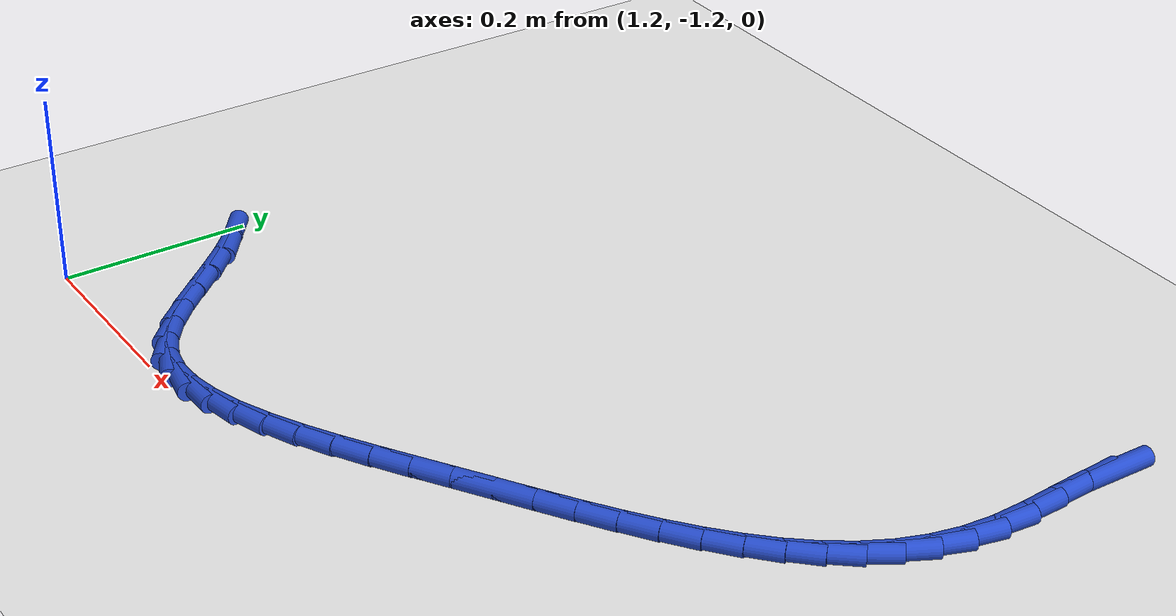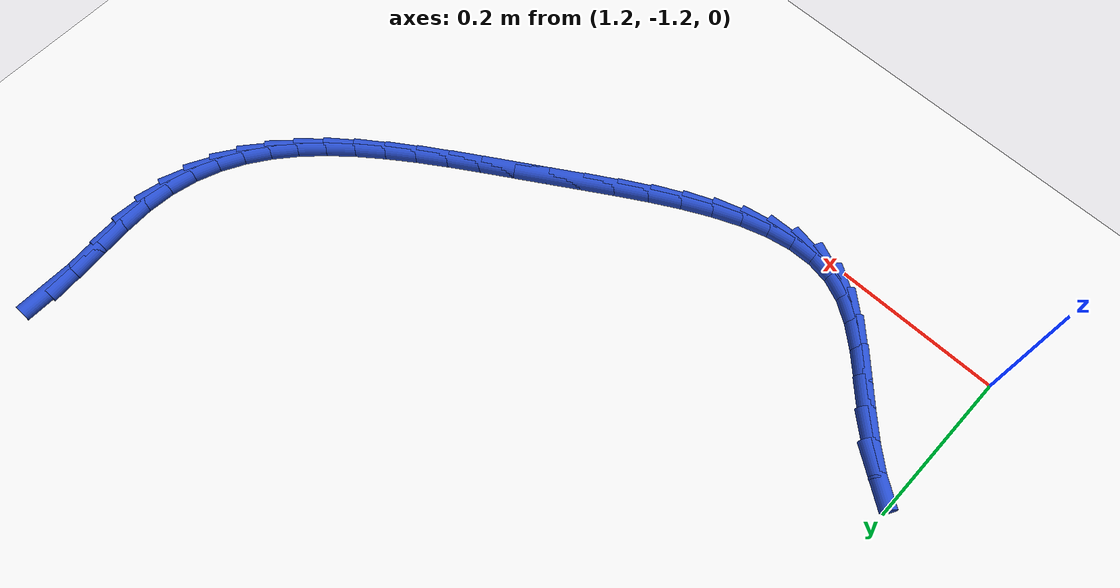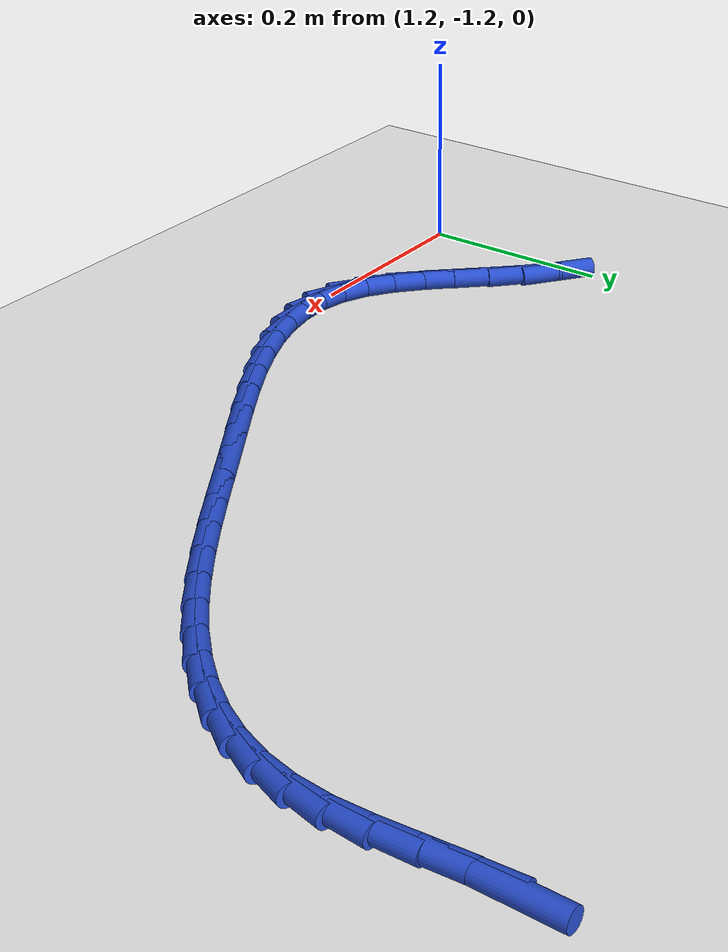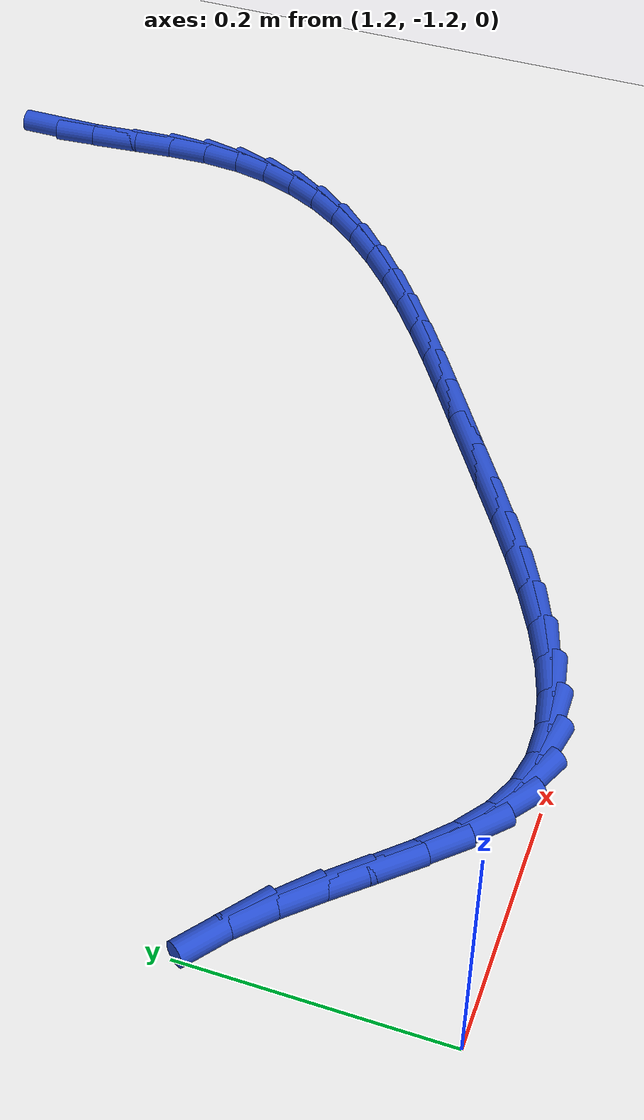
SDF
<sdf version="1.6">
 <world name="default">
  <model name="ground_plane">
   <static>1</static>
   <link name="link">
    <collision name="collision">
     <geometry><plane><normal>0 0 1</normal><size>100 100</size></plane></geometry>
     <surface><friction><ode><mu>100</mu><mu2>50</mu2></ode></friction></surface>
    </collision>
    <visual name="visual">
     <cast_shadows>0</cast_shadows>
     <geometry><plane><normal>0 0 1</normal><size>100 100</size></plane></geometry>
     <material>
      <script><uri>file://media/materials/scripts/gazebo.material</uri><name>Gazebo/WhiteGlow</name></script>
     </material>
    </visual>
   </link>
  </model>
  <model name="line">
   <link name="link_122">
    <pose>2.0444113715785863 -0.5550982972731053 0.01 0 1.57 1.5674267809676676</pose>
    <collision name="collision">
     <geometry><cylinder><radius>0.01</radius><length>0.08</length></cylinder></geometry>
    </collision>
    <visual name="visual">
     <material>
      <script><name>Gazebo/Blue</name><uri>file://media/materials/scripts/gazebo.material</uri></script>
     </material>
     <geometry><cylinder><radius>0.01</radius><length>0.08</length></cylinder></geometry>
    </visual>
   </link>
   <link name="link_123">
    <pose>2.044293367879539 -0.5901188188802325 0.01 0 1.57 -1.493837935682603</pose>
    <collision name="collision">
     <geometry><cylinder><radius>0.01</radius><length>0.08</length></cylinder></geometry>
    </collision>
    <visual name="visual">
     <material>
      <script><name>Gazebo/Blue</name><uri>file://media/materials/scripts/gazebo.material</uri></script>
     </material>
     <geometry><cylinder><radius>0.01</radius><length>0.08</length></cylinder></geometry>
    </visual>
   </link>
   <link name="link_124">
    <pose>2.0471248156564976 -0.6268380861268281 0.01 0 1.57 -1.4815270692511242</pose>
    <collision name="collision">
     <geometry><cylinder><radius>0.01</radius><length>0.08</length></cylinder></geometry>
    </collision>
    <visual name="visual">
     <material>
      <script><name>Gazebo/Blue</name><uri>file://media/materials/scripts/gazebo.material</uri></script>
     </material>
     <geometry><cylinder><radius>0.01</radius><length>0.08</length></cylinder></geometry>
    </visual>
   </link>
   <link name="link_125">
    <pose>2.0504473537734875 -0.6639584537274638 0.01 0 1.57 -1.5334000667984646</pose>
    <collision name="collision">
     <geometry><cylinder><radius>0.01</radius><length>0.08</length></cylinder></geometry>
    </collision>
    <visual name="visual">
     <material>
      <script><name>Gazebo/Blue</name><uri>file://media/materials/scripts/gazebo.material</uri></script>
     </material>
     <geometry><cylinder><radius>0.01</radius><length>0.08</length></cylinder></geometry>
    </visual>
   </link>
   <link name="link_126">
    <pose>2.051802621094533 -0.7001822763967085 0.01 0 1.57 1.4914013308325451</pose>
    <collision name="collision">
     <geometry><cylinder><radius>0.01</radius><length>0.08</length></cylinder></geometry>
    </collision>
    <visual name="visual">
     <material>
      <script><name>Gazebo/Blue</name><uri>file://media/materials/scripts/gazebo.material</uri></script>
     </material>
     <geometry><cylinder><radius>0.01</radius><length>0.08</length></cylinder></geometry>
    </visual>
   </link>
   <link name="link_127">
    <pose>2.049080281900035 -0.7343987482108449 0.01 0 1.57 1.3535852086469191</pose>
    <collision name="collision">
     <geometry><cylinder><radius>0.01</radius><length>0.08</length></cylinder></geometry>
    </collision>
    <visual name="visual">
     <material>
      <script><name>Gazebo/Blue</name><uri>file://media/materials/scripts/gazebo.material</uri></script>
     </material>
     <geometry><cylinder><radius>0.01</radius><length>0.08</length></cylinder></geometry>
    </visual>
   </link>
   <link name="link_128">
    <pose>2.0420002556558816 -0.7664796458235601 0.01 0 1.57 1.2173846462992663</pose>
    <collision name="collision">
     <geometry><cylinder><radius>0.01</radius><length>0.08</length></cylinder></geometry>
    </collision>
    <visual name="visual">
     <material>
      <script><name>Gazebo/Blue</name><uri>file://media/materials/scripts/gazebo.material</uri></script>
     </material>
     <geometry><cylinder><radius>0.01</radius><length>0.08</length></cylinder></geometry>
    </visual>
   </link>
   <link name="link_129">
    <pose>2.0308820027217656 -0.7966186127196623 0.01 0 1.57 1.0892435020557771</pose>
    <collision name="collision">
     <geometry><cylinder><radius>0.01</radius><length>0.08</length></cylinder></geometry>
    </collision>
    <visual name="visual">
     <material>
      <script><name>Gazebo/Blue</name><uri>file://media/materials/scripts/gazebo.material</uri></script>
     </material>
     <geometry><cylinder><radius>0.01</radius><length>0.08</length></cylinder></geometry>
    </visual>
   </link>
   <link name="link_130">
    <pose>2.016045329883029 -0.8250094783644769 0.01 0 1.57 0.9739662295538516</pose>
    <collision name="collision">
     <geometry><cylinder><radius>0.01</radius><length>0.08</length></cylinder></geometry>
    </collision>
    <visual name="visual">
     <material>
      <script><name>Gazebo/Blue</name><uri>file://media/materials/scripts/gazebo.material</uri></script>
     </material>
     <geometry><cylinder><radius>0.01</radius><length>0.08</length></cylinder></geometry>
    </visual>
   </link>
   <link name="link_131">
    <pose>1.9978100439250137 -0.8518460722233293 0.01 0 1.57 0.8741160988835499</pose>
    <collision name="collision">
     <geometry><cylinder><radius>0.01</radius><length>0.08</length></cylinder></geometry>
    </collision>
    <visual name="visual">
     <material>
      <script><name>Gazebo/Blue</name><uri>file://media/materials/scripts/gazebo.material</uri></script>
     </material>
     <geometry><cylinder><radius>0.01</radius><length>0.08</length></cylinder></geometry>
    </visual>
   </link>
   <link name="link_132">
    <pose>1.9764959516330605 -0.8773222237615459 0.01 0 1.57 0.7902851436520131</pose>
    <collision name="collision">
     <geometry><cylinder><radius>0.01</radius><length>0.08</length></cylinder></geometry>
    </collision>
    <visual name="visual">
     <material>
      <script><name>Gazebo/Blue</name><uri>file://media/materials/scripts/gazebo.material</uri></script>
     </material>
     <geometry><cylinder><radius>0.01</radius><length>0.08</length></cylinder></geometry>
    </visual>
   </link>
   <link name="link_133">
    <pose>1.9524228597925113 -0.90163176244445 0.01 0 1.57 0.7217812061195968</pose>
    <collision name="collision">
     <geometry><cylinder><radius>0.01</radius><length>0.08</length></cylinder></geometry>
    </collision>
    <visual name="visual">
     <material>
      <script><name>Gazebo/Blue</name><uri>file://media/materials/scripts/gazebo.material</uri></script>
     </material>
     <geometry><cylinder><radius>0.01</radius><length>0.08</length></cylinder></geometry>
    </visual>
   </link>
   <link name="link_134">
    <pose>1.9259105751887082 -0.9249685177373683 0.01 0 1.57 0.6672956932156234</pose>
    <collision name="collision">
     <geometry><cylinder><radius>0.01</radius><length>0.08</length></cylinder></geometry>
    </collision>
    <visual name="visual">
     <material>
      <script><name>Gazebo/Blue</name><uri>file://media/materials/scripts/gazebo.material</uri></script>
     </material>
     <geometry><cylinder><radius>0.01</radius><length>0.08</length></cylinder></geometry>
    </visual>
   </link>
   <link name="link_135">
    <pose>1.897278904606992 -0.9475263191056263 0.01 0 1.57 0.6253673754369606</pose>
    <collision name="collision">
     <geometry><cylinder><radius>0.01</radius><length>0.08</length></cylinder></geometry>
    </collision>
    <visual name="visual">
     <material>
      <script><name>Gazebo/Blue</name><uri>file://media/materials/scripts/gazebo.material</uri></script>
     </material>
     <geometry><cylinder><radius>0.01</radius><length>0.08</length></cylinder></geometry>
    </visual>
   </link>
   <link name="link_136">
    <pose>1.8668476548327049 -0.9694989960145495 0.01 0 1.57 0.5946413041679584</pose>
    <collision name="collision">
     <geometry><cylinder><radius>0.01</radius><length>0.08</length></cylinder></geometry>
    </collision>
    <visual name="visual">
     <material>
      <script><name>Gazebo/Blue</name><uri>file://media/materials/scripts/gazebo.material</uri></script>
     </material>
     <geometry><cylinder><radius>0.01</radius><length>0.08</length></cylinder></geometry>
    </visual>
   </link>
   <link name="link_137">
    <pose>1.834936632651188 -0.9910803779294628 0.01 0 1.57 0.5739859466319727</pose>
    <collision name="collision">
     <geometry><cylinder><radius>0.01</radius><length>0.08</length></cylinder></geometry>
    </collision>
    <visual name="visual">
     <material>
      <script><name>Gazebo/Blue</name><uri>file://media/materials/scripts/gazebo.material</uri></script>
     </material>
     <geometry><cylinder><radius>0.01</radius><length>0.08</length></cylinder></geometry>
    </visual>
   </link>
   <link name="link_138">
    <pose>1.8018656448477819 -1.012464294315692 0.01 0 1.57 0.5625298779416827</pose>
    <collision name="collision">
     <geometry><cylinder><radius>0.01</radius><length>0.08</length></cylinder></geometry>
    </collision>
    <visual name="visual">
     <material>
      <script><name>Gazebo/Blue</name><uri>file://media/materials/scripts/gazebo.material</uri></script>
     </material>
     <geometry><cylinder><radius>0.01</radius><length>0.08</length></cylinder></geometry>
    </visual>
   </link>
   <link name="link_139">
    <pose>1.7679544982078301 -1.0338445746385627 0.01 0 1.57 0.5596592985712474</pose>
    <collision name="collision">
     <geometry><cylinder><radius>0.01</radius><length>0.08</length></cylinder></geometry>
    </collision>
    <visual name="visual">
     <material>
      <script><name>Gazebo/Blue</name><uri>file://media/materials/scripts/gazebo.material</uri></script>
     </material>
     <geometry><cylinder><radius>0.01</radius><length>0.08</length></cylinder></geometry>
    </visual>
   </link>
   <link name="link_140">
    <pose>1.7335229995166732 -1.0554150483633993 0.01 0 1.57 0.5635042863274787</pose>
    <collision name="collision">
     <geometry><cylinder><radius>0.01</radius><length>0.08</length></cylinder></geometry>
    </collision>
    <visual name="visual">
     <material>
      <script><name>Gazebo/Blue</name><uri>file://media/materials/scripts/gazebo.material</uri></script>
     </material>
     <geometry><cylinder><radius>0.01</radius><length>0.08</length></cylinder></geometry>
    </visual>
   </link>
   <link name="link_141">
    <pose>1.6988803219098632 -1.0773037472425178 0.01 0 1.57 0.5611586046868732</pose>
    <collision name="collision">
     <geometry><cylinder><radius>0.01</radius><length>0.08</length></cylinder></geometry>
    </collision>
    <visual name="visual">
     <material>
      <script><name>Gazebo/Blue</name><uri>file://media/materials/scripts/gazebo.material</uri></script>
     </material>
     <geometry><cylinder><radius>0.01</radius><length>0.08</length></cylinder></geometry>
    </visual>
   </link>
   <link name="link_142">
    <pose>1.6642444760515722 -1.0990746180482496 0.01 0 1.57 0.54585882576377</pose>
    <collision name="collision">
     <geometry><cylinder><radius>0.01</radius><length>0.08</length></cylinder></geometry>
    </collision>
    <visual name="visual">
     <material>
      <script><name>Gazebo/Blue</name><uri>file://media/materials/scripts/gazebo.material</uri></script>
     </material>
     <geometry><cylinder><radius>0.01</radius><length>0.08</length></cylinder></geometry>
    </visual>
   </link>
   <link name="link_143">
    <pose>1.6297871162394568 -1.1200047687947763 0.01 0 1.57 0.5163618130859364</pose>
    <collision name="collision">
     <geometry><cylinder><radius>0.01</radius><length>0.08</length></cylinder></geometry>
    </collision>
    <visual name="visual">
     <material>
      <script><name>Gazebo/Blue</name><uri>file://media/materials/scripts/gazebo.material</uri></script>
     </material>
     <geometry><cylinder><radius>0.01</radius><length>0.08</length></cylinder></geometry>
    </visual>
   </link>
   <link name="link_144">
    <pose>1.5956795307106708 -1.1393690424279208 0.01 0 1.57 0.47029416527301465</pose>
    <collision name="collision">
     <geometry><cylinder><radius>0.01</radius><length>0.08</length></cylinder></geometry>
    </collision>
    <visual name="visual">
     <material>
      <script><name>Gazebo/Blue</name><uri>file://media/materials/scripts/gazebo.material</uri></script>
     </material>
     <geometry><cylinder><radius>0.01</radius><length>0.08</length></cylinder></geometry>
    </visual>
   </link>
   <link name="link_145">
    <pose>1.562093007702371 -1.156442281893509 0.01 0 1.57 0.40385233182448954</pose>
    <collision name="collision">
     <geometry><cylinder><radius>0.01</radius><length>0.08</length></cylinder></geometry>
    </collision>
    <visual name="visual">
     <material>
      <script><name>Gazebo/Blue</name><uri>file://media/materials/scripts/gazebo.material</uri></script>
     </material>
     <geometry><cylinder><radius>0.01</radius><length>0.08</length></cylinder></geometry>
    </visual>
   </link>
   <link name="link_146">
    <pose>1.5291988354517123 -1.1704993301373623 0.01 0 1.57 0.31156896049774796</pose>
    <collision name="collision">
     <geometry><cylinder><radius>0.01</radius><length>0.08</length></cylinder></geometry>
    </collision>
    <visual name="visual">
     <material>
      <script><name>Gazebo/Blue</name><uri>file://media/materials/scripts/gazebo.material</uri></script>
     </material>
     <geometry><cylinder><radius>0.01</radius><length>0.08</length></cylinder></geometry>
    </visual>
   </link>
   <link name="link_147">
    <pose>1.4971683021958513 -1.1808150301053058 0.01 0 1.57 0.18651702968733677</pose>
    <collision name="collision">
     <geometry><cylinder><radius>0.01</radius><length>0.08</length></cylinder></geometry>
    </collision>
    <visual name="visual">
     <material>
      <script><name>Gazebo/Blue</name><uri>file://media/materials/scripts/gazebo.material</uri></script>
     </material>
     <geometry><cylinder><radius>0.01</radius><length>0.08</length></cylinder></geometry>
    </visual>
   </link>
   <link name="link_148">
    <pose>1.4661726961719435 -1.1866642247431634 0.01 0 1.57 0.022069115494866565</pose>
    <collision name="collision">
     <geometry><cylinder><radius>0.01</radius><length>0.08</length></cylinder></geometry>
    </collision>
    <visual name="visual">
     <material>
      <script><name>Gazebo/Blue</name><uri>file://media/materials/scripts/gazebo.material</uri></script>
     </material>
     <geometry><cylinder><radius>0.01</radius><length>0.08</length></cylinder></geometry>
    </visual>
   </link>
   <link name="link_149">
    <pose>1.4363833056171436 -1.187321756996759 0.01 0 1.57 -0.18303685839386197</pose>
    <collision name="collision">
     <geometry><cylinder><radius>0.01</radius><length>0.08</length></cylinder></geometry>
    </collision>
    <visual name="visual">
     <material>
      <script><name>Gazebo/Blue</name><uri>file://media/materials/scripts/gazebo.material</uri></script>
     </material>
     <geometry><cylinder><radius>0.01</radius><length>0.08</length></cylinder></geometry>
    </visual>
   </link>
   <link name="link_150">
    <pose>1.4079714187686077 -1.1820624698119166 0.01 0 1.57 -0.4150978607780704</pose>
    <collision name="collision">
     <geometry><cylinder><radius>0.01</radius><length>0.08</length></cylinder></geometry>
    </collision>
    <visual name="visual">
     <material>
      <script><name>Gazebo/Blue</name><uri>file://media/materials/scripts/gazebo.material</uri></script>
     </material>
     <geometry><cylinder><radius>0.01</radius><length>0.08</length></cylinder></geometry>
    </visual>
   </link>
   <link name="link_151">
    <pose>1.3810921995871173 -1.170216647806839 0.01 0 1.57 -0.612733724716369</pose>
    <collision name="collision">
     <geometry><cylinder><radius>0.01</radius><length>0.08</length></cylinder></geometry>
    </collision>
    <visual name="visual">
     <material>
      <script><name>Gazebo/Blue</name><uri>file://media/materials/scripts/gazebo.material</uri></script>
     </material>
     <geometry><cylinder><radius>0.01</radius><length>0.08</length></cylinder></geometry>
    </visual>
   </link>
   <link name="link_152">
    <pose>1.3555645403917354 -1.1522708111887745 0.01 0 1.57 -0.738556440027594</pose>
    <collision name="collision">
     <geometry><cylinder><radius>0.01</radius><length>0.08</length></cylinder></geometry>
    </collision>
    <visual name="visual">
     <material>
      <script><name>Gazebo/Blue</name><uri>file://media/materials/scripts/gazebo.material</uri></script>
     </material>
     <geometry><cylinder><radius>0.01</radius><length>0.08</length></cylinder></geometry>
    </visual>
   </link>
   <link name="link_153">
    <pose>1.3308892232806597 -1.1298052695690357 0.01 0 1.57 -0.8060669280220623</pose>
    <collision name="collision">
     <geometry><cylinder><radius>0.01</radius><length>0.08</length></cylinder></geometry>
    </collision>
    <visual name="visual">
     <material>
      <script><name>Gazebo/Blue</name><uri>file://media/materials/scripts/gazebo.material</uri></script>
     </material>
     <geometry><cylinder><radius>0.01</radius><length>0.08</length></cylinder></geometry>
    </visual>
   </link>
   <link name="link_154">
    <pose>1.306554541870279 -1.1044432729241933 0.01 0 1.57 -0.8270129563700466</pose>
    <collision name="collision">
     <geometry><cylinder><radius>0.01</radius><length>0.08</length></cylinder></geometry>
    </collision>
    <visual name="visual">
     <material>
      <script><name>Gazebo/Blue</name><uri>file://media/materials/scripts/gazebo.material</uri></script>
     </material>
     <geometry><cylinder><radius>0.01</radius><length>0.08</length></cylinder></geometry>
    </visual>
   </link>
   <link name="link_155">
    <pose>1.2820487897769821 -1.0778080712308187 0.01 0 1.57 -0.8066995665501817</pose>
    <collision name="collision">
     <geometry><cylinder><radius>0.01</radius><length>0.08</length></cylinder></geometry>
    </collision>
    <visual name="visual">
     <material>
      <script><name>Gazebo/Blue</name><uri>file://media/materials/scripts/gazebo.material</uri></script>
     </material>
     <geometry><cylinder><radius>0.01</radius><length>0.08</length></cylinder></geometry>
    </visual>
   </link>
   <link name="link_156">
    <pose>1.2568602606171566 -1.051522914465483 0.01 0 1.57 -0.744565641965556</pose>
    <collision name="collision">
     <geometry><cylinder><radius>0.01</radius><length>0.08</length></cylinder></geometry>
    </collision>
    <visual name="visual">
     <material>
      <script><name>Gazebo/Blue</name><uri>file://media/materials/scripts/gazebo.material</uri></script>
     </material>
     <geometry><cylinder><radius>0.01</radius><length>0.08</length></cylinder></geometry>
    </visual>
   </link>
   <link name="link_157">
    <pose>1.2304772480071908 -1.0272110526047569 0.01 0 1.57 -0.636048177920545</pose>
    <collision name="collision">
     <geometry><cylinder><radius>0.01</radius><length>0.08</length></cylinder></geometry>
    </collision>
    <visual name="visual">
     <material>
      <script><name>Gazebo/Blue</name><uri>file://media/materials/scripts/gazebo.material</uri></script>
     </material>
     <geometry><cylinder><radius>0.01</radius><length>0.08</length></cylinder></geometry>
    </visual>
   </link>
  </model>
 </world>
</sdf>
